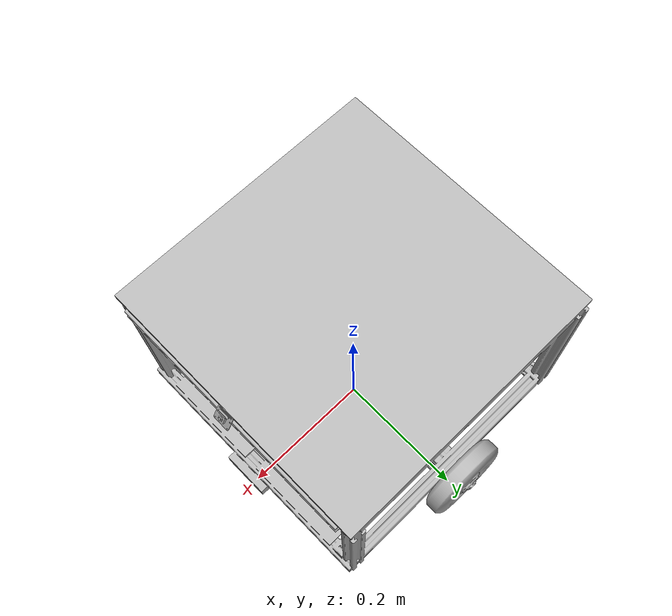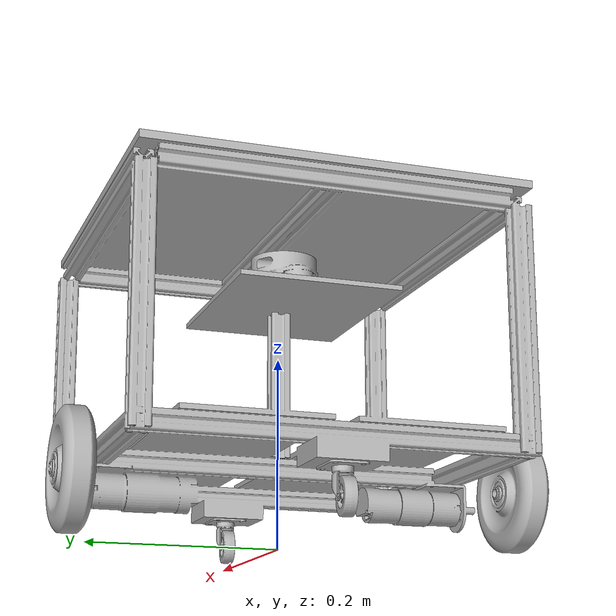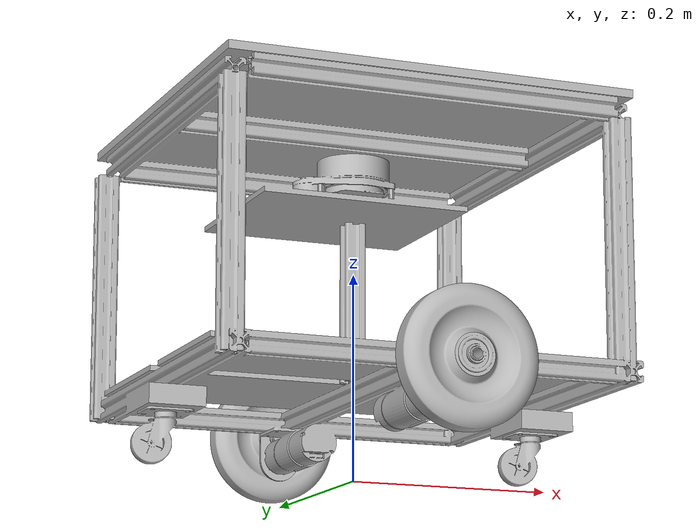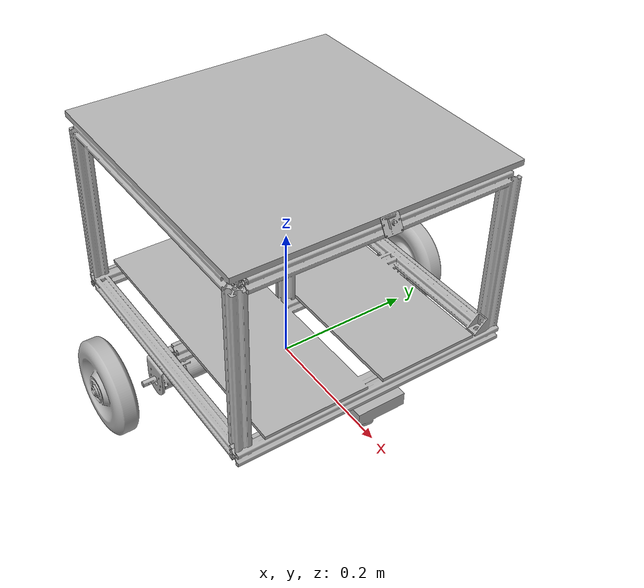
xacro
<?xml version="1.0" ?>
<robot name="robo_pathfinding" xmlns:xacro="http://www.ros.org/wiki/xacro">

<xacro:include filename="$(find robo_pathfinding_description)/urdf/materials.xacro" />
<xacro:include filename="$(find robo_pathfinding_description)/urdf/robo_pathfinding.trans" />
<xacro:include filename="$(find robo_pathfinding_description)/urdf/robo_pathfinding.gazebo" />
<link name="base_link">
  <inertial>
    <origin xyz="-0.0005904137171287146 -0.0006363364236436363 0.22494517974525913" rpy="0 0 0"/>
    <mass value="25.930757364368493"/>
    <inertia ixx="0.789752" iyy="0.815434" izz="0.778285" ixy="-0.000676" iyz="-0.000152" ixz="0.000874"/>
  </inertial>
  <visual>
    <origin xyz="0 0 0" rpy="0 0 0"/>
    <geometry>
      <mesh filename="file://$(find robo_pathfinding_description)/meshes/base_link.stl" scale="0.001 0.001 0.001"/>
    </geometry>
    <material name="silver"/>
  </visual>
  <collision>
    <origin xyz="0 0 0" rpy="0 0 0"/>
    <geometry>
      <mesh filename="file://$(find robo_pathfinding_description)/meshes/base_link.stl" scale="0.001 0.001 0.001"/>
    </geometry>
  </collision>
</link>

<link name="right_wheel_1">
  <inertial>
    <origin xyz="-4.109503543101717e-08 0.015434569471468346 8.025839944719726e-08" rpy="0 0 0"/>
    <mass value="0.7587807360410279"/>
    <inertia ixx="0.000471" iyy="0.000848" izz="0.000471" ixy="0.0" iyz="0.0" ixz="-0.0"/>
  </inertial>
  <visual>
    <origin xyz="0.0004 -0.219143 -0.051401" rpy="0 0 0"/>
    <geometry>
      <mesh filename="file://$(find robo_pathfinding_description)/meshes/right_wheel_1.stl" scale="0.001 0.001 0.001"/>
    </geometry>
    <material name="silver"/>
  </visual>
  <collision>
    <origin xyz="0.0 0.0 0.0" rpy="1.5708 0 0"/>
    <geometry>
      <cylinder radius="0.04569" length="0.03"/>
    </geometry>
  </collision>
</link>

<link name="left_wheel_1">
  <inertial>
    <origin xyz="-7.524557149030502e-08 -0.015434238679753465 1.147094458864295e-07" rpy="0 0 0"/>
    <mass value="0.7587807360410276"/>
    <inertia ixx="0.000471" iyy="0.000848" izz="0.000471" ixy="-0.0" iyz="-0.0" ixz="-0.0"/>
  </inertial>
  <visual>
    <origin xyz="0.0 0.221897 -0.051401" rpy="0 0 0"/>
    <geometry>
      <mesh filename="file://$(find robo_pathfinding_description)/meshes/left_wheel_1.stl" scale="0.001 0.001 0.001"/>
    </geometry>
    <material name="silver"/>
  </visual>
  <collision>
    <origin xyz="0.0 0.0 0.0" rpy="1.5708 0 0"/>
    <geometry>
      <cylinder radius="0.04569" length="0.03"/>
    </geometry>
  </collision>
</link>

<link name="lidar_link_1">
  <inertial>
    <origin xyz="0.16987271446092378 -0.4603471678818125 0.13623639119487277" rpy="0 0 0"/>
    <mass value="0.14165595417779858"/>
    <inertia ixx="5.7e-05" iyy="8.9e-05" izz="0.000109" ixy="-0.0" iyz="1e-06" ixz="-1.2e-05"/>
  </inertial>
  <visual>
    <origin xyz="0.1775 -0.454404 -0.154404" rpy="0 0 0"/>
    <geometry>
      <mesh filename="file://$(find robo_pathfinding_description)/meshes/lidar_link_1.stl" scale="0.001 0.001 0.001"/>
    </geometry>
    <material name="silver"/>
  </visual>
  <collision>
    <origin xyz="0.1775 -0.454404 -0.154404" rpy="0 0 0"/>
    <geometry>
      <mesh filename="file://$(find robo_pathfinding_description)/meshes/lidar_link_1.stl" scale="0.001 0.001 0.001"/>
    </geometry>
  </collision>
</link>

<link name="camera_link_1">
  <inertial>
    <origin xyz="0.006690808947223986 2.5957552714385825e-06 -0.007259521551848169" rpy="0 0 0"/>
    <mass value="0.013740723692193035"/>
    <inertia ixx="1e-06" iyy="1e-06" izz="1e-06" ixy="-0.0" iyz="0.0" ixz="0.0"/>
  </inertial>
  <visual>
    <origin xyz="-0.2 0.000387 -0.352791" rpy="0 0 0"/>
    <geometry>
      <mesh filename="file://$(find robo_pathfinding_description)/meshes/camera_link_1.stl" scale="0.001 0.001 0.001"/>
    </geometry>
    <material name="silver"/>
  </visual>
  <collision>
    <origin xyz="-0.2 0.000387 -0.352791" rpy="0 0 0"/>
    <geometry>
      <mesh filename="file://$(find robo_pathfinding_description)/meshes/camera_link_1.stl" scale="0.001 0.001 0.001"/>
    </geometry>
  </collision>
</link>

<link name="laser_frame"/>

<joint name="laser_joint" type="fixed">
  <parent link="lidar_link_1"/>
  <child link="laser_frame"/>
  <origin xyz="0.1775 -0.454404 0.15" rpy="0 0 0"/>
</joint>

<joint name="Revolute 8" type="continuous">
  <origin xyz="-0.0004 0.219143 0.051401" rpy="0 0 0"/>
  <parent link="base_link"/>
  <child link="right_wheel_1"/>
  <axis xyz="-0.0 1.0 0.0"/>
</joint>

<joint name="Revolute 9" type="continuous">
  <origin xyz="0.0 -0.221897 0.051401" rpy="0 0 0"/>
  <parent link="base_link"/>
  <child link="left_wheel_1"/>
  <axis xyz="0.0 1.0 -0.0"/>
</joint>

<joint name="Rigid 10" type="fixed">
  <origin xyz="-0.1775 0.454404 0.154404" rpy="0 0 0"/>
  <parent link="base_link"/>
  <child link="lidar_link_1"/>
</joint>

<joint name="Rigid 11" type="fixed">
  <origin xyz="0.2 -0.000387 0.352791" rpy="0 0 0"/>
  <parent link="base_link"/>
  <child link="camera_link_1"/>
</joint>

<link name="camera_optical_frame"/>

<joint name="camera_optical_joint" type="fixed">
  <parent link="camera_link_1"/>
  <child link="camera_optical_frame"/>
  <origin xyz="0 0 0" rpy="-1.5708 0 -1.5708"/> </joint>

</robot>

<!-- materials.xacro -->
<robot name="robo_pathfinding" xmlns:xacro="http://www.ros.org/wiki/xacro" >

<material name="silver">
  <color rgba="0.700 0.700 0.700 1.000"/>
</material>

</robot>

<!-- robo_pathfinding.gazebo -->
<robot name="robo_pathfinding" xmlns:xacro="http://www.ros.org/wiki/xacro" >

<xacro:property name="body_color" value="Gazebo/Silver" />

<gazebo reference="base_link">
  <material>${body_color}</material>
  <mu1>0.2</mu1>
  <mu2>0.2</mu2>
  <self_collide>false</self_collide>
  <gravity>true</gravity>
</gazebo>

<xacro:property name="jalankan_kamera_ai" value="true" />

<xacro:if value="${jalankan_kamera_ai}">
  <gazebo reference="base_link">
    <sensor type="camera" name="human_awareness_camera">
      <always_on>1</always_on>
      <update_rate>10.0</update_rate>
      <visualize>false</visualize>
      <pose>0.2 -0.000387 0.352791 0 0 0</pose>
      <camera name="head">
        <horizontal_fov>1.3962634</horizontal_fov>
        <image>
          <width>320</width>
          <height>240</height>
          <format>R8G8B8</format>
        </image>
        <clip>
          <near>0.02</near>
          <far>300.0</far>
        </clip>
        <noise>
          <type>gaussian</type>
          <mean>0.0</mean>
          <stddev>0.007</stddev>
        </noise>
      </camera>
      <plugin name="camera_controller" filename="libgazebo_ros_camera.so">
        <ros>
          <remapping>~/image_raw:=/camera/image_raw</remapping>
          <remapping>~/camera_info:=/camera/camera_info</remapping>
        </ros>
        <camera_name>camera</camera_name>
        <frame_name>camera_optical_frame</frame_name>
        <hack_baseline>0.07</hack_baseline>
      </plugin>
    </sensor>
  </gazebo>
</xacro:if>

<gazebo reference="right_wheel_1">
  <material>${body_color}</material>
  <!-- DEGRADED FRICTION AND STIFFNESS -->
  <mu1>0.8</mu1>          <!-- Forward friction -->
  <mu2>0.5</mu2>          <!-- Lateral friction (allows slight drifting/slip) -->
  <kp>100000.0</kp>       <!-- Reduced contact stiffness (squish) -->
  <kd>100.0</kd>          <!-- Contact damping -->
  <minDepth>0.001</minDepth> <!-- Adds micro-compliance before force is applied -->
  <self_collide>false</self_collide>
</gazebo>

<gazebo reference="left_wheel_1">
  <material>${body_color}</material>
  <mu1>0.8</mu1>
  <mu2>0.5</mu2>
  <kp>100000.0</kp>
  <kd>100.0</kd>
  <minDepth>0.001</minDepth>
  <self_collide>false</self_collide>
</gazebo>

<gazebo reference="camera_link_1">
  <material>${body_color}</material>
  <mu1>0.2</mu1>
  <mu2>0.2</mu2>
  <self_collide>false</self_collide>
</gazebo>

<gazebo reference="laser_frame">
  <material>${body_color}</material>
  <mu1>0.2</mu1>
  <mu2>0.2</mu2>
  <self_collide>false</self_collide>

  <sensor name="lidar" type="ray">
    <always_on>true</always_on>
    <visualize>true</visualize>
    <update_rate>10</update_rate>
    <ray>
      <scan>
        <horizontal>
          <samples>360</samples>
          <resolution>1.000000</resolution>
          <min_angle>0.000000</min_angle>
          <max_angle>6.28319</max_angle>
        </horizontal>
      </scan>
      <range>
        <min>0.150000</min>
        <max>12.0</max>
        <resolution>0.015000</resolution>
      </range>
      <noise>
        <type>gaussian</type>
        <mean>0.0</mean>
        <stddev>0.015</stddev>
      </noise>
      </ray>

    <plugin name="scan" filename="libgazebo_ros_ray_sensor.so">
      <ros>
        <remapping>~/out:=scan</remapping>
      </ros>
      <output_type>sensor_msgs/LaserScan</output_type>

      <frame_name>laser_frame</frame_name>

    </plugin>
  </sensor>
</gazebo>

<gazebo reference="lidar_link_1">
  <material>${body_color}</material>
  <mu1>0.2</mu1>
  <mu2>0.2</mu2>
  <self_collide>false</self_collide>

</gazebo>

<gazebo>
  <plugin name="diff_drive" filename="libgazebo_ros_diff_drive.so">
    <ros>
      <namespace>/</namespace>
      <remapping>cmd_vel:=cmd_vel</remapping>
      <remapping>odom:=odom</remapping>
    </ros>

    <left_joint>Revolute 8</left_joint>
    <right_joint>Revolute 9</right_joint>

    <wheel_separation>0.45</wheel_separation>
    <wheel_diameter>0.15</wheel_diameter>

    <max_wheel_torque>25</max_wheel_torque>
    <max_wheel_acceleration>2.0</max_wheel_acceleration>

    <publish_odom>true</publish_odom>
    <publish_odom_tf>true</publish_odom_tf>
    <publish_wheel_tf>true</publish_wheel_tf>
    <odometry_frame>odom</odometry_frame>
    <robot_base_frame>base_link</robot_base_frame>
  </plugin>
</gazebo>

</robot>
